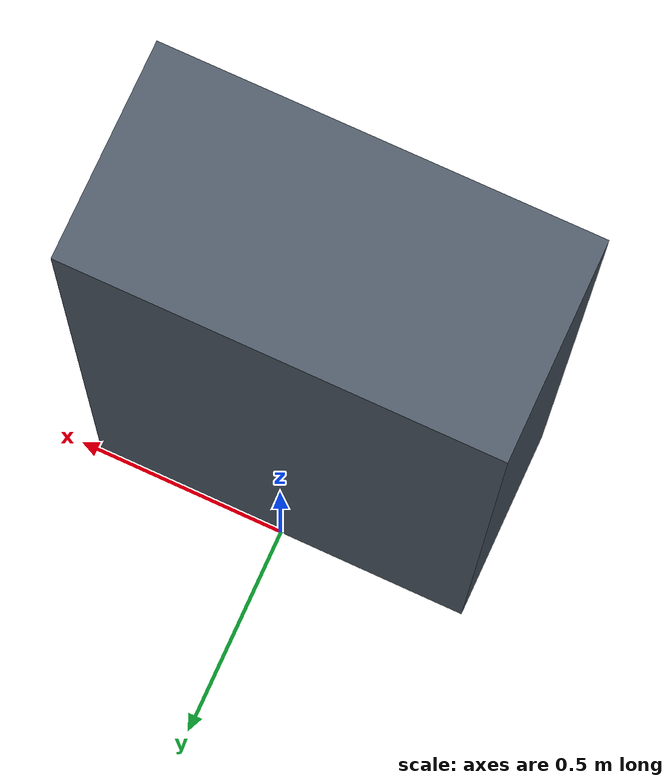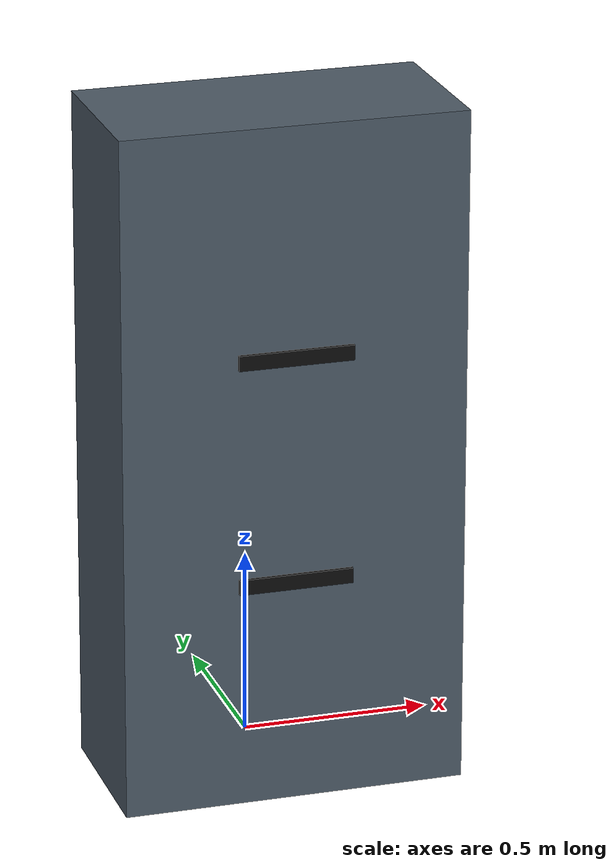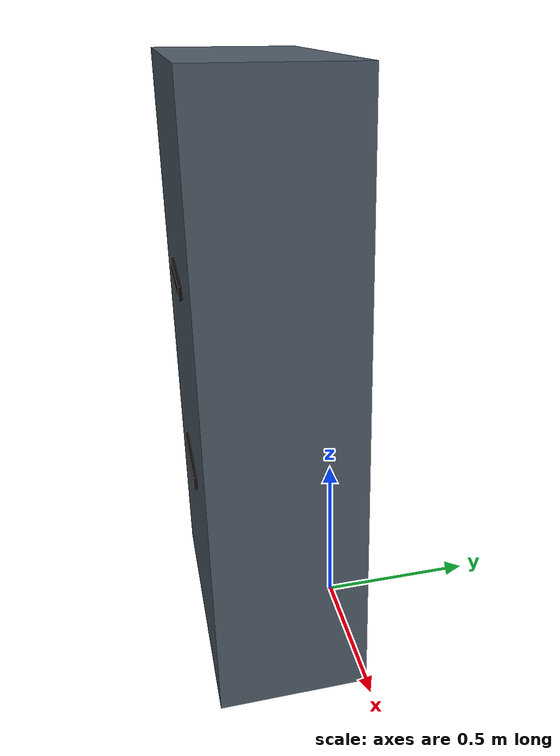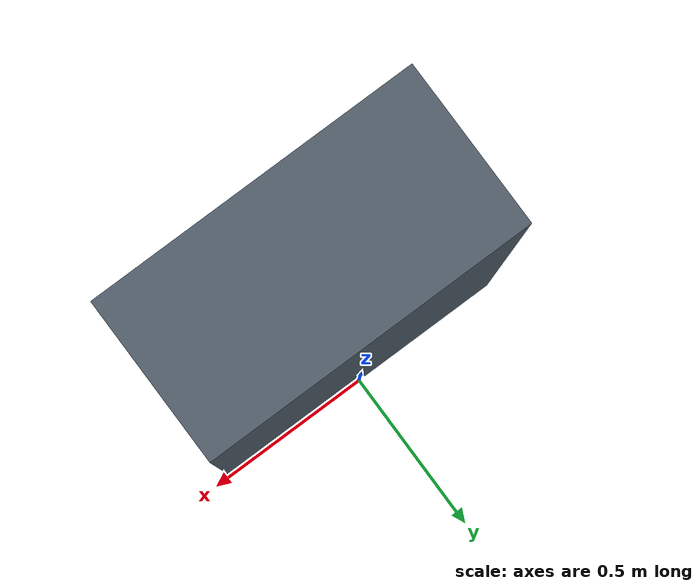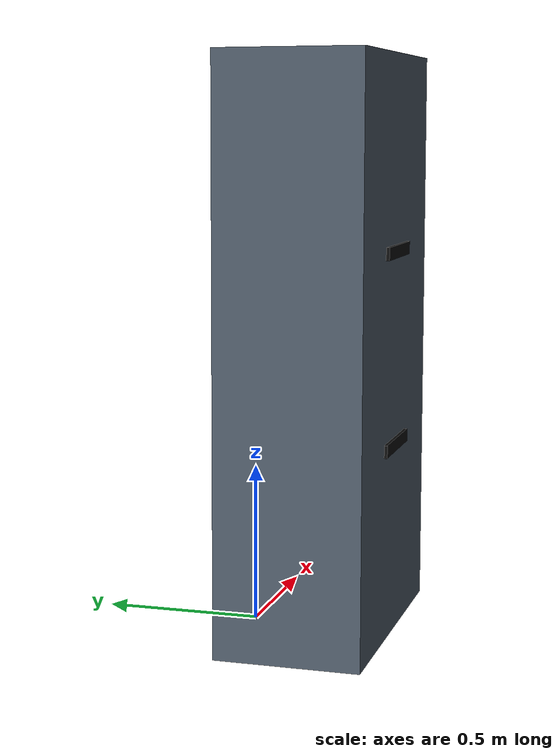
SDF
<?xml version="1.0"?>

<sdf version="1.10">

  <model name="office_cabinet">

    <static>true</static>

    <link name="cabinet_link">
      <pose>0.0 -0.225 0.0 0 0 0</pose>

      <collision name="body_collision">
        <pose>0 0 0.9 0 0 0</pose>
        <geometry>
          <box>
            <size>0.9 0.45 1.8</size>
          </box>
        </geometry>
      </collision>

      <visual name="body_visual">
        <pose>0 0 0.9 0 0 0</pose>
        <geometry>
          <box>
            <size>0.9 0.45 1.8</size>
          </box>
        </geometry>
        <material>
          <ambient>0.3 0.35 0.4 1</ambient>
          <diffuse>0.3 0.35 0.4 1</diffuse>
          <specular>0.3 0.3 0.3 1</specular>
        </material>
      </visual>

      <!-- Drawer handles, purely cosmetic -->

      <visual name="handle_1_visual">
        <pose>0 -0.225 0.6 0 0 0</pose>
        <geometry>
          <box>
            <size>0.3 0.02 0.04</size>
          </box>
        </geometry>
        <material>
          <ambient>0.05 0.05 0.05 1</ambient>
          <diffuse>0.05 0.05 0.05 1</diffuse>
        </material>
      </visual>

      <visual name="handle_2_visual">
        <pose>0 -0.225 1.2 0 0 0</pose>
        <geometry>
          <box>
            <size>0.3 0.02 0.04</size>
          </box>
        </geometry>
        <material>
          <ambient>0.05 0.05 0.05 1</ambient>
          <diffuse>0.05 0.05 0.05 1</diffuse>
        </material>
      </visual>

    </link>

  </model>

</sdf>
